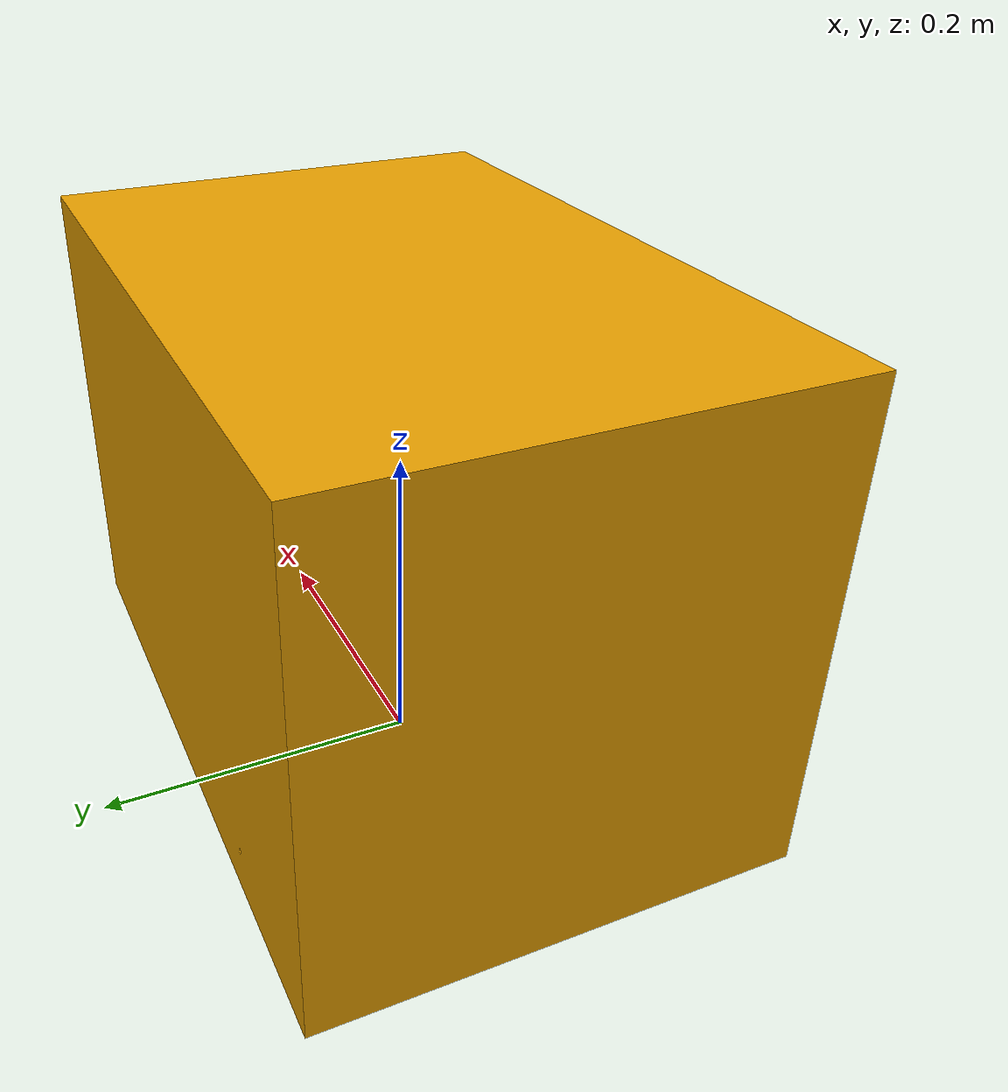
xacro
<?xml version="1.0"?>
  <robot xmlns:xacro="http://www.ros.org/wiki/xacro">
  <xacro:property name="base_x" value="0.43"/>
  <xacro:property name="base_y" value="0.29"/>
  <xacro:property name="base_z" value="0.3"/>

    <link name="base_link">
      <visual>
        <origin xyz="0 0 0" rpy="0 0 0"/>
        <geometry>
        <mesh filename="package://cargo_bot_description/meshes/visual/base_link.stl"
        scale="0.001 0.001 0.001"/>
        </geometry>
      </visual>
      <collision>
        <origin xyz="0 0 0" rpy="0 0 0"/>
        <geometry>
        <mesh filename="package://cargo_bot_description/meshes/collision/base_link.stl"
        scale="0.001 0.001 0.001"/>
        </geometry>
      </collision>
      <xacro:inertial_box mass="2.5" x="${base_x}" y="${base_y}" z="${base_z}"/>  <!--  cambiar valores -->
    </link>
    <link name="base_footprint"/>
        <joint name="base_footprint_joint" type="fixed">
        <parent link="base_footprint"/>
        <child link="base_link"/>
        <origin xyz="0 0 0.02" rpy="0 0 0"/>
        </joint>
  </robot>
